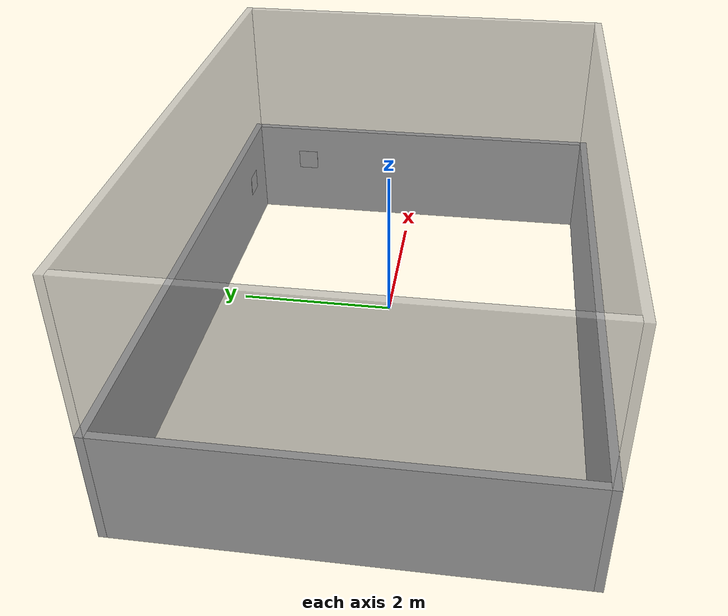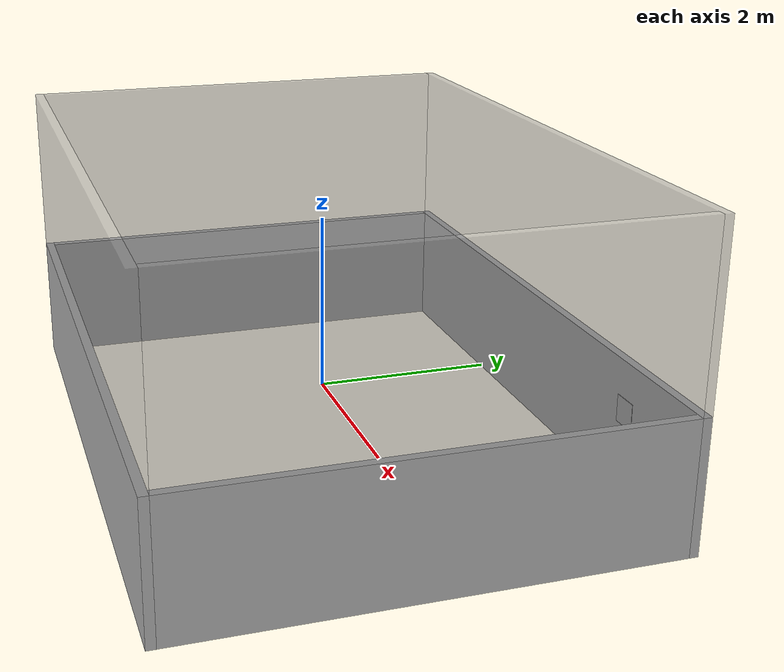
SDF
<sdf version="1.7">
 <world name="default">
  <light name="sun" type="directional">
   <pose>0 0 10 0 0 0</pose>
   <diffuse>0.4 0.4 0.4 1</diffuse>
   <specular>0.1 0.1 0.1 1</specular>
   <attenuation>
    <range>500</range>
    <constant>0.8</constant>
    <linear>0.02</linear>
    <quadratic>0.001</quadratic>
   </attenuation>
   <direction>-0.5 0.1 -0.9</direction>
  </light>
  <scene><ambient>0.4 0.4 0.4 1</ambient><background>0 0 0 1</background><shadows>1</shadows></scene>
  <physics type="ode">
   <max_step_size>0.001</max_step_size>
   <real_time_factor>1</real_time_factor>
   <real_time_update_rate>1000</real_time_update_rate>
  </physics>
  <gravity>0 0 -9.81</gravity>
  <model name="arena_wall_long">
   <pose>0 -2.68 0.1 0 0 0</pose>
   <static>1</static>
   <link name="arena_wall_long_link">
    <visual name="arena_wall_long"><geometry><box><size>7.42 0.1 1.5</size></box></geometry></visual>
    <collision name="arena_wall_long_collision">
     <geometry><box><size>7.42 0.1 1.5</size></box></geometry>
     <surface><friction><ode><mu>0.3</mu><mu2>0.3</mu2></ode></friction></surface>
    </collision>
   </link>
  </model>
  <model name="arena_wall_long_2">
   <pose>0 2.68 0.1 0 0 0</pose>
   <static>1</static>
   <link name="arena_wall_long_2_link">
    <visual name="arena_wall_long_2"><geometry><box><size>7.42 0.1 1.5</size></box></geometry></visual>
    <collision name="arena_wall_long_2_collision">
     <geometry><box><size>7.42 0.1 1.5</size></box></geometry>
     <surface><friction><ode><mu>0.3</mu><mu2>0.3</mu2></ode></friction></surface>
    </collision>
   </link>
  </model>
  <model name="arena_wall_short">
   <pose>3.66 0 0.1 0 0 0</pose>
   <static>1</static>
   <link name="arena_wall_short_link">
    <visual name="arena_wall_short"><geometry><box><size>0.1 5.26 1.5</size></box></geometry></visual>
    <collision name="arena_wall_short_collision">
     <geometry><box><size>0.1 5.26 1.5</size></box></geometry>
     <surface><friction><ode><mu>0.3</mu><mu2>0.3</mu2></ode></friction></surface>
    </collision>
   </link>
  </model>
  <model name="arena_wall_short_2">
   <pose>-3.66 0 0.1 0 0 0</pose>
   <static>1</static>
   <link name="arena_wall_short_2_link">
    <visual name="arena_wall_short_2"><geometry><box><size>0.1 5.26 1.5</size></box></geometry></visual>
    <collision name="arena_wall_short_2_collision">
     <geometry><box><size>0.1 5.26 1.5</size></box></geometry>
     <surface><friction><ode><mu>0.3</mu><mu2>0.3</mu2></ode></friction></surface>
    </collision>
   </link>
  </model>
  <model name="arena_glass_short">
   <pose>3.66 0 1.85 0 0 0</pose>
   <static>1</static>
   <link name="arena_glass_short_link">
    <visual name="arena_glass_short">
     <geometry><box><size>0.1 5.26 2.0</size></box></geometry>
     <material>
      <script><name>Gazebo/GreyTransparent</name><uri>file://media/materials/scripts/gazebo.material</uri></script>
     </material>
    </visual>
    <collision name="arena_glass_short_collision">
     <geometry><box><size>0.1 5.26 2.0</size></box></geometry>
     <surface><friction><ode><mu>0.3</mu><mu2>0.3</mu2></ode></friction></surface>
    </collision>
   </link>
  </model>
  <model name="arena_glass_short_2">
   <pose>-3.66 0 1.85 0 0 0</pose>
   <static>1</static>
   <link name="arena_glass_short_2_link">
    <visual name="arena_glass_short_2">
     <geometry><box><size>0.1 5.26 2.0</size></box></geometry>
     <material>
      <script><name>Gazebo/GreyTransparent</name><uri>file://media/materials/scripts/gazebo.material</uri></script>
     </material>
    </visual>
    <collision name="arena_glass_short_2_collision">
     <geometry><box><size>0.1 5.26 2.0</size></box></geometry>
     <surface><friction><ode><mu>0.3</mu><mu2>0.3</mu2></ode></friction></surface>
    </collision>
   </link>
  </model>
  <model name="arena_glass_long">
   <pose>0 2.68 1.85 0 0 0</pose>
   <static>1</static>
   <link name="arena_glass_long_link">
    <visual name="arena_glass_long">
     <geometry><box><size>7.42 0.1 2</size></box></geometry>
     <material>
      <script><name>Gazebo/GreyTransparent</name><uri>file://media/materials/scripts/gazebo.material</uri></script>
     </material>
    </visual>
    <collision name="arena_glass_long_collision">
     <geometry><box><size>7.42 0.1 2</size></box></geometry>
     <surface><friction><ode><mu>0.3</mu><mu2>0.3</mu2></ode></friction></surface>
    </collision>
   </link>
  </model>
  <model name="arena_glass_long_2">
   <pose>0 -2.68 1.85 0 0 0</pose>
   <static>1</static>
   <link name="arena_glass_long_2_link">
    <visual name="arena_wall_short_2">
     <geometry><box><size>7.42 0.1 2</size></box></geometry>
     <material>
      <script><name>Gazebo/GreyTransparent</name><uri>file://media/materials/scripts/gazebo.material</uri></script>
     </material>
    </visual>
    <collision name="arena_wall_short_2_collision">
     <geometry><box><size>7.42 0.1 2</size></box></geometry>
     <surface><friction><ode><mu>0.3</mu><mu2>0.3</mu2></ode></friction></surface>
    </collision>
   </link>
  </model>
  <model name="tag_36_11_00007">
   <pose>3.4 1.8 0.4 0 -1.58 0</pose>
   <static>1</static>
   <link name="link">
    <visual name="tag_36_11_00007">
     <geometry><box><size>0.3 0.3 0.005</size></box></geometry>
     <material>
      <script>
       <uri>model://apriltags/tag_36_11_00007/materials/scripts</uri>
       <uri>model://apriltags/tag_36_11_00007/materials/textures</uri>
       <name>tag_36_11_00007</name>
      </script>
     </material>
    </visual>
    <collision name="tag_36_11_00007_collision">
     <geometry><box><size>0.3 0.3 0.005</size></box></geometry>
    </collision>
   </link>
  </model>
  <model name="tag_36_11_00011">
   <pose>2.5 2.5 0.4 1.58 0 0</pose>
   <static>1</static>
   <link name="link">
    <visual name="tag_36_11_00011">
     <geometry><box><size>0.3 0.3 0.005</size></box></geometry>
     <material>
      <script>
       <uri>model://apriltags/tag_36_11_00011/materials/scripts</uri>
       <uri>model://apriltags/tag_36_11_00011/materials/textures</uri>
       <name>tag_36_11_00011</name>
      </script>
     </material>
    </visual>
    <collision name="tag_36_11_00011_collision">
     <geometry><box><size>0.3 0.3 0.005</size></box></geometry>
    </collision>
   </link>
  </model>
 </world>
</sdf>
